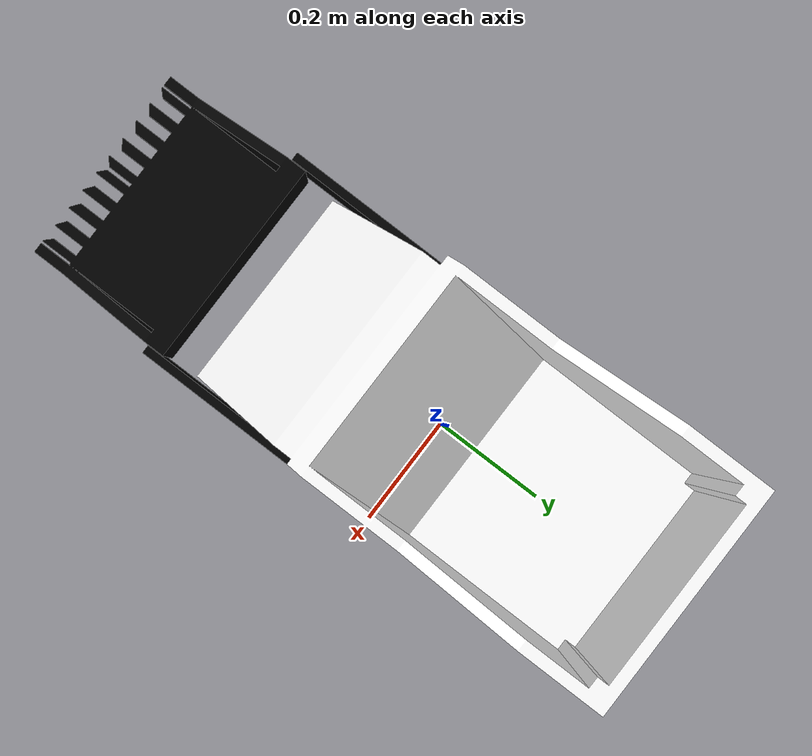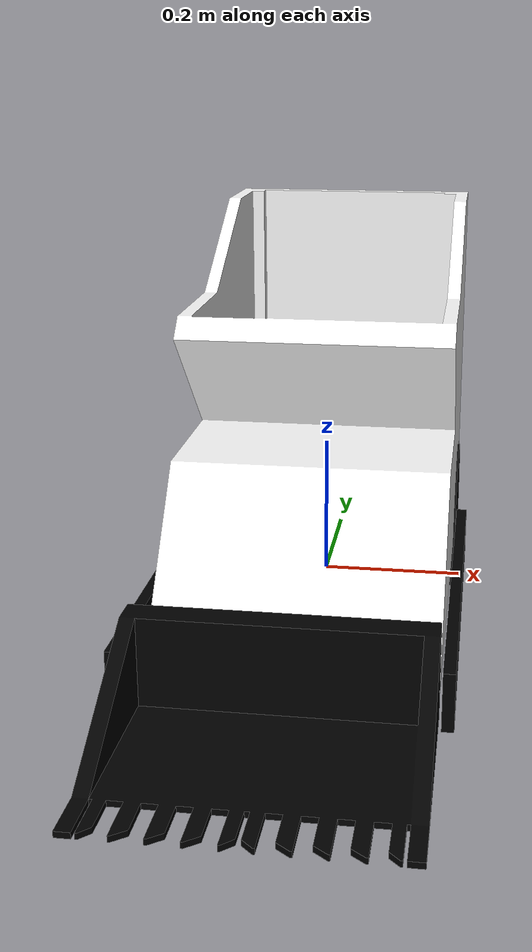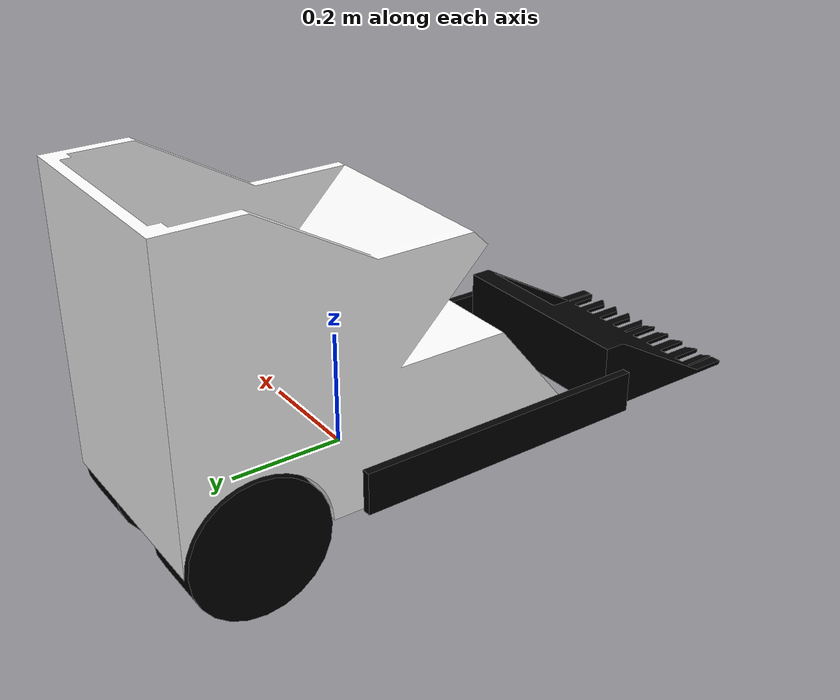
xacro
<?xml version="1.0"?>
<robot xmlns:xacro="http://www.ros.org/wiki/xacro" >
    <xacro:include filename="inertial_macros.xacro" />

<!-- MATERIAL -->

    <material name="white">
        <color rgba="1 1 1 1" />
    </material>

    <material name="black">
        <color rgba="0 0 0 1"/>
    </material>

 <!-- BASE LINK -->
    <link name="base_link"> <!-- สร้าง link ชื่อ base_link  -->

    </link>

<!--chassis-->

    <link name="chassis"> <!-- สร้าง link ชื่อ chassis  -->
        <visual>
            <origin xyz="0 0 0" rpy="0 0 0"/> <!-- กำหนด visual ของ link chassis และตั้งค่าพิกัด (x, y, z) และแกนหมุน -->
            <geometry>
                <mesh filename="file://$(find articubot_one)/description/robolab2/blend/body.dae" scale="1 1 1"/>
            </geometry>
            <material name="white"/> <!-- ดึงข้อมูลค่าสีจาก material ชื่อ white -->
        </visual>
        <collision>
            <origin xyz="0 0 0" rpy="0 0 0"/> <!-- กำหนด collision ของ link chassis และตั้งค่าพิกัด (x, y, z) และแกนหมุน -->
            <geometry>
                <mesh filename="file://$(find articubot_one)/description/robolab2/blend/body.dae" scale="1 1 1"/>
            </geometry>
        </collision>
        <xacro:inertial_box mass="1" x="0.375" y="0.75" z="0.525"> <!-- กำหนด inertial_box ค่ามวล และพิกัดของ inertial -->
            <origin xyz="0 0 0" rpy="0 0 0"/> <!-- กำหนด inertial_box ของ link chassis และตั้งค่าพิกัด (x, y, z) และแกนหมุน -->
        </xacro:inertial_box>
    </link>
    <gazebo reference="chassis">
        <material>Gazebo/White</material>
    </gazebo>

    <joint name="chassis_joint" type="fixed"> <!-- สร้าง joint ชื่อ chassis_joint แบบ fixed  -->
        <parent link="base_link"/> <!-- สร้าง joint_link หลัก ชื่อ base_link -->
        <child link="chassis"/> <!-- สร้าง joint_link ย่อย ชื่อ chassis -->
        <origin xyz="0 0 0"/> <!-- กำหนดตั้งค่าพิกัด (x, y, z) ของ joint -->
    </joint>

    <!-- BASE_FOOTPRINT LINK -->

    <joint name="base_footprint_joint" type="fixed">
        <parent link="base_link"/>
        <child link="base_footprint"/>
        <origin xyz="0 0 0" rpy="0 0 0"/>
    </joint>

    <link name="base_footprint">
    </link>
<!--LEFT-WHEEl-->

    <joint name="left_wheel_joint" type="continuous"> <!-- สร้าง joint ชื่อ left_wheel_joint แบบ continuous  -->
        <parent link="base_link"/> <!-- สร้าง joint_link หลัก ชื่อ base_link -->
        <child link="left_wheel"/> <!-- สร้าง joint_link ย่อย ชื่อ left_wheel -->
        <origin xyz="0.13 0.25 0" rpy="0 ${pi/2} 0"/> <!-- กำหนดตั้งค่าพิกัด (x, y, z) และการหันหน้าของ joint -->
        <axis xyz="0 0 1"/> <!-- กำหนดแกนหมุนของ joint -->
    </joint>
    <link name="left_wheel"> <!-- สร้าง link ชื่อ left_wheel  -->
        <visual>
            <geometry>
                <cylinder length="0.12" radius="0.12" /> <!-- สร้างทรงกระบอก visual และกำหนดความยาวและรัศมี -->
            </geometry>
            <material name="black"/> <!-- ดึงข้อมูลค่าสีจาก material ชื่อ blue -->
        </visual>
        <collision>
            <geometry>
                <cylinder length="0.12" radius="0.12" />  <!-- สร้างกล่อง collision และกำหนดขนาด -->
            </geometry>
        </collision>
        <xacro:inertial_cylinder mass="0.05" length="0.12" radius="0.12"> <!-- กำหนด inertial_cylinder ค่ามวล ความยาวและรัศมี -->
            <origin xyz="0.13 0.25 0" rpy="0 0 0"/> <!-- กำหนด inertial_cylinder ของ link left_wheel และตั้งค่าพิกัด (x, y, z) และแกนหมุน -->
        </xacro:inertial_cylinder>
    </link>
    <gazebo reference="left_wheel">
        <material>Gazebo/Black</material>
    </gazebo>

<!--RIGHT-WHEEl-->

        <joint name="right_wheel_joint" type="continuous"> <!-- สร้าง joint ชื่อ right_wheel_joint แบบ continuous  -->
        <parent link="base_link"/> <!-- สร้าง joint_link หลัก ชื่อ base_link -->
        <child link="right_wheel"/> <!-- สร้าง joint_link ย่อย ชื่อ right_wheel -->
        <origin xyz="-0.13 0.25 0" rpy="0 -${pi/2} 0"/> <!-- กำหนดตั้งค่าพิกัด (x, y, z) และการหันหน้าของ joint -->
        <axis xyz="0 0 -1"/> <!-- กำหนดแกนหมุนของ joint -->
    </joint>
    <link name="right_wheel"> <!-- สร้าง link ชื่อ right_wheel  -->
        <visual>
            <geometry>
                <cylinder length="0.12" radius="0.12" /> <!-- สร้างทรงกระบอก visual และกำหนดความยาวและรัศมี -->
            </geometry>
            <material name="black"/> <!-- ดึงข้อมูลค่าสีจาก material ชื่อ blue -->
        </visual>
        <collision>
            <geometry>
                <cylinder length="0.12" radius="0.12" />  <!-- สร้างกล่อง collision และกำหนดขนาด -->
            </geometry>
        </collision>
        <xacro:inertial_cylinder mass="0.05" length="0.12" radius="0.12"> <!-- กำหนด inertial_cylinder ค่ามวล ความยาวและรัศมี -->
            <origin xyz="-0.13 0.25 0" rpy="0 0 0"/> <!-- กำหนด inertial_cylinder ของ link right_wheel และตั้งค่าพิกัด (x, y, z) และแกนหมุน -->
        </xacro:inertial_cylinder>
    </link>
    <gazebo reference="right_wheel">
        <material>Gazebo/Black</material>
    </gazebo>

<!--CASTER-->

    <joint name="caster_wheel_joint" type="fixed"> <!-- สร้าง joint ชื่อ caster_wheel_joint แบบ fixed  -->
        <parent link="chassis"/> <!-- สร้าง joint_link หลัก ชื่อ chassis -->
        <child link="caster_wheel"/> <!-- สร้าง joint_link ย่อย ชื่อ caster_wheel -->
        <origin xyz="0 -0.2 0" rpy="0 ${pi/2} 0"/> <!-- กำหนดตั้งค่าพิกัด (x, y, z) และการหันหน้าของ joint -->
    </joint>

    <link name="caster_wheel"> <!-- สร้าง link ชื่อ caster_wheel  -->
        <visual>
            <geometry>
                <sphere radius="0.12" /> <!-- สร้างทรงกลม visual และกำหนดความยาวและรัศมี -->
            </geometry>
            <material name="black"/> <!-- ดึงข้อมูลค่าสีจาก material ชื่อ black -->
        </visual>
        <collision>
            <geometry>
                <sphere radius="0.12" />
            </geometry>
        </collision>
        <xacro:inertial_sphere mass="0.1" radius="0.12"> <!-- กำหนด inertial_sphere ค่ามวล และรัศมี -->
            <origin xyz="0 -0.2 0" rpy="0 0 0"/> <!-- กำหนด inertial_sphere ของ link caster_wheel และตั้งค่าพิกัด (x, y, z) และแกนหมุน -->
        </xacro:inertial_sphere>
    </link>
    <gazebo reference="caster_wheel">
        <material>Gazebo/Black</material>
        <mu1 value="0.1"/>
        <mu2 value="0.1"/>
    </gazebo>

<!--LEFT-CON-->

    <joint name="left_con_joint" type="revolute"> <!-- สร้าง joint ชื่อ left_wheel_joint แบบ continuous  -->
        <parent link="chassis"/> <!-- สร้าง joint_link หลัก ชื่อ base_link -->
        <child link="left_con"/> <!-- สร้าง joint_link ย่อย ชื่อ left_wheel -->
        <limit effort="1000.0" lower="-0.225" upper="1.57" velocity="0.5"/>
        <origin xyz="0.2 0.03753 0.0375" rpy="0 0 0"/> <!-- กำหนดตั้งค่าพิกัด (x, y, z) และการหันหน้าของ joint -->
        <axis xyz="-1 0 0"/> <!-- กำหนดแกนหมุนของ joint -->
    </joint>
    <link name="left_con"> <!-- สร้าง link ชื่อ left_wheel  -->
        <visual>
            <origin xyz="0 -0.231 0" rpy="0 0 0"/>
            <geometry>
                <box size="0.015 0.537 0.075"/> <!-- สร้างกล่อง visual และกำหนดขนาด -->
            </geometry>
            <material name="black"/> <!-- ดึงข้อมูลค่าสีจาก material ชื่อ blue -->
        </visual>
        <collision>
            <origin xyz="0 -0.231 0" rpy="0 0 0"/>
            <geometry>
                <box size="0.015 0.537 0.075"/>  <!-- สร้างกล่อง collision และกำหนดขนาด -->
            </geometry>
        </collision>
        <xacro:inertial_box mass="0.1" x="0.015" y="0.537" z="0.075"> <!-- กำหนด inertial_cylinder ค่ามวล ความยาวและรัศมี -->
            <origin xyz="0.205 0.03753 0.0375" rpy="0 0 0"/> <!-- กำหนด inertial_cylinder ของ link left_wheel และตั้งค่าพิกัด (x, y, z) และแกนหมุน -->
        </xacro:inertial_box>
    </link>
    <gazebo reference="left_con">
        <material>Gazebo/Black</material>
    </gazebo>

<!--RIGHT-CON-->

    <joint name="right_con_joint" type="fixed"> <!-- สร้าง joint ชื่อ left_wheel_joint แบบ continuous  -->
        <parent link="left_con"/> <!-- สร้าง joint_link หลัก ชื่อ base_link -->
        <child link="right_con"/> <!-- สร้าง joint_link ย่อย ชื่อ left_wheel -->
        <limit effort="1000.0" lower="0.0" upper="1.57" velocity="0.5"/>
        <origin xyz="-0.4 0 0" rpy="0 0 0"/> <!-- กำหนดตั้งค่าพิกัด (x, y, z) และการหันหน้าของ joint -->
        <axis xyz="-1 0 0"/> <!-- กำหนดแกนหมุนของ joint -->
    </joint>
    <link name="right_con"> <!-- สร้าง link ชื่อ left_wheel  -->
        <visual>
            <origin xyz="0 -0.231 0" rpy="0 0 0"/>
            <geometry>
                <box size="0.015 0.537 0.075"/> <!-- สร้างกล่อง visual และกำหนดขนาด -->
            </geometry>
            <material name="black"/> <!-- ดึงข้อมูลค่าสีจาก material ชื่อ blue -->
        </visual>
        <collision>
            <origin xyz="0 -0.231 0" rpy="0 0 0"/>
            <geometry>
                <box size="0.015 0.537 0.075"/>  <!-- สร้างกล่อง collision และกำหนดขนาด -->
            </geometry>
        </collision>
        <xacro:inertial_box mass="0.1" x="0.015" y="0.537" z="0.075"> <!-- กำหนด inertial_cylinder ค่ามวล ความยาวและรัศมี -->
            <origin xyz="-0.205 0.03753 0.0375" rpy="0 0 0"/> <!-- กำหนด inertial_cylinder ของ link left_wheel และตั้งค่าพิกัด (x, y, z) และแกนหมุน -->
        </xacro:inertial_box>
    </link>
    <gazebo reference="right_con">
        <material>Gazebo/Black</material>
    </gazebo>

<!--ARM-->

    <joint name="arm_joint" type="revolute"> <!-- สร้าง joint ชื่อ left_wheel_joint แบบ continuous  -->
        <parent link="left_con"/> <!-- สร้าง joint_link หลัก ชื่อ base_link -->
        <child link="arm"/> <!-- สร้าง joint_link ย่อย ชื่อ left_wheel -->
        <limit effort="1000.0" lower="0.0" upper="1.57" velocity="0.5"/>
        <origin xyz="-0.0125 -0.46265 0" rpy="0 0 0"/> <!-- กำหนดตั้งค่าพิกัด (x, y, z) และการหันหน้าของ joint -->
        <axis xyz="-1 0 0"/> <!-- กำหนดแกนหมุนของ joint -->
    </joint>
    <link name="arm"> <!-- สร้าง link ชื่อ left_wheel  -->
        <visual>
            <origin xyz="-0.1875 -0.147 -0.0375" rpy="0 0 0"/>
            <geometry>
                <mesh filename="file://$(find articubot_one)/description/robolab2/blend/arm.dae" scale="1 1 1"/>
            </geometry>
            <material name="black"/> <!-- ดึงข้อมูลค่าสีจาก material ชื่อ blue -->
        </visual>
        <collision>
            <origin xyz="-0.1875 -0.147 -0.0375" rpy="0 0 0"/>
            <geometry>
                <mesh filename="file://$(find articubot_one)/description/robolab2/blend/arm.dae" scale="1 1 1"/>
            </geometry>
        </collision>
        <xacro:inertial_box mass="0.1" x="0.375" y="0.294" z="0.122"> <!-- กำหนด inertial_cylinder ค่ามวล ความยาวและรัศมี -->
            <origin xyz="-0.0125 -0.46265 0" rpy="0 0 0"/> <!-- กำหนด inertial_cylinder ของ link left_wheel และตั้งค่าพิกัด (x, y, z) และแกนหมุน -->
        </xacro:inertial_box>
    </link>
    <gazebo reference="arm">
        <material>Gazebo/White</material>
    </gazebo>

</robot>

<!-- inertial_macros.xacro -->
<robot xmlns:xacro="http://www.ros.org/wiki/xacro" >

    <!-- Specify some standard inertial calculations https://en.wikipedia.org/wiki/List_of_moments_of_inertia -->
    <!-- These make use of xacro's mathematical functionality -->

    <xacro:macro name="inertial_sphere" params="mass radius *origin">
        <inertial>
            <xacro:insert_block name="origin"/>
            <mass value="${mass}" />
            <inertia ixx="${(2/5) * mass * (radius*radius)}" ixy="0.0" ixz="0.0"
                    iyy="${(2/5) * mass * (radius*radius)}" iyz="0.0"
                    izz="${(2/5) * mass * (radius*radius)}" />
        </inertial>
    </xacro:macro>

    <xacro:macro name="inertial_box" params="mass x y z *origin">
        <inertial>
            <xacro:insert_block name="origin"/>
            <mass value="${mass}" />
            <inertia ixx="${(1/12) * mass * (y*y+z*z)}" ixy="0.0" ixz="0.0"
                    iyy="${(1/12) * mass * (x*x+z*z)}" iyz="0.0"
                    izz="${(1/12) * mass * (x*x+y*y)}" />
        </inertial>
    </xacro:macro>

    <xacro:macro name="inertial_cylinder" params="mass length radius *origin">
        <inertial>
            <xacro:insert_block name="origin"/>
            <mass value="${mass}" />
            <inertia ixx="${(1/12) * mass * (3*radius*radius + length*length)}" ixy="0.0" ixz="0.0"
                    iyy="${(1/12) * mass * (3*radius*radius + length*length)}" iyz="0.0"
                    izz="${(1/2) * mass * (radius*radius)}" />
        </inertial>
    </xacro:macro>
    <xacro:macro name="mimic_joint_plugin_gazebo" params="name_prefix parent_joint mimic_joint has_pid:=false multiplier:=1.0 offset:=0 sensitiveness:=0.0 max_effort:=1.0 robot_namespace:=''">
        <gazebo>
        <plugin name="${name_prefix}mimic_joint_plugin" filename="libroboticsgroup_gazebo_mimic_joint_plugin.so">
            <joint>${parent_joint}</joint>
            <mimicJoint>${mimic_joint}</mimicJoint>
            <xacro:if value="${has_pid}">                     <!-- if set to true, PID parameters from "/gazebo_ros_control/pid_gains/${mimic_joint}" are loaded -->
            <hasPID />
            </xacro:if>
            <multiplier>${multiplier}</multiplier>
            <offset>${offset}</offset>
            <sensitiveness>${sensitiveness}</sensitiveness>   <!-- if absolute difference between setpoint and process value is below this threshold, do nothing; 0.0 = disable [rad] -->
            <maxEffort>${max_effort}</maxEffort>              <!-- only taken into account if has_pid:=true [Nm] -->
            <xacro:unless value="${robot_namespace == ''}">
            <robotNamespace>${robot_namespace}</robotNamespace>
            </xacro:unless>
        </plugin>
        </gazebo>
    </xacro:macro>

</robot>
